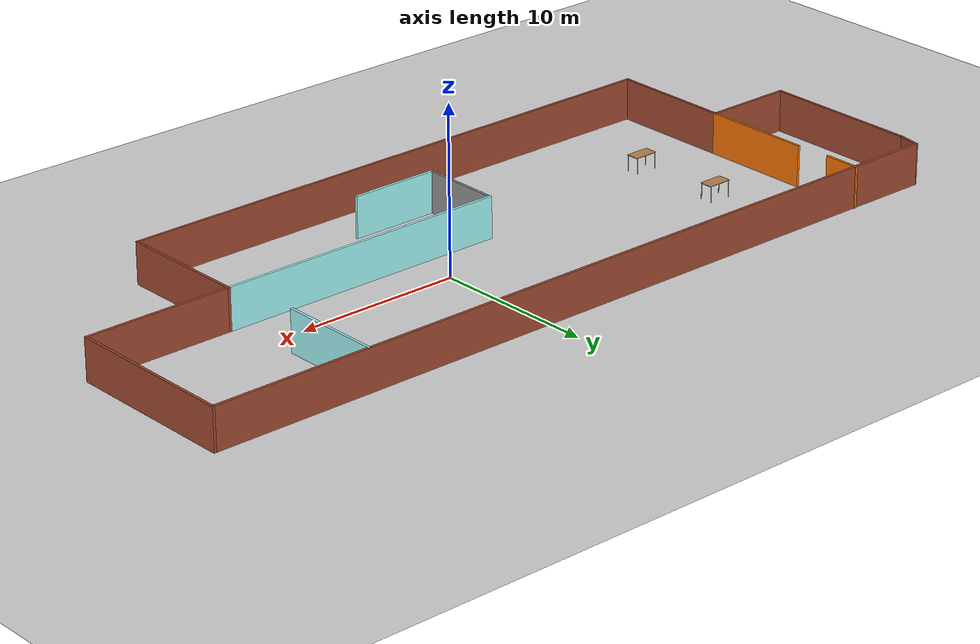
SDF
<sdf version="1.7">
 <world name="default">
  <light name="sun" type="directional">
   <pose>0 0 10 0 -0 0</pose>
   <diffuse>0.8 0.8 0.8 1</diffuse>
   <specular>0.2 0.2 0.2 1</specular>
   <attenuation>
    <range>1000</range>
    <constant>0.9</constant>
    <linear>0.01</linear>
    <quadratic>0.001</quadratic>
   </attenuation>
   <direction>-0.5 0.1 -0.9</direction>
   <spot><inner_angle>0</inner_angle><outer_angle>0</outer_angle><falloff>0</falloff></spot>
  </light>
  <model name="ground_plane">
   <static>1</static>
   <link name="link">
    <collision name="collision">
     <geometry><plane><normal>0 0 1</normal><size>100 100</size></plane></geometry>
     <surface>
      <contact><collide_bitmask>65535</collide_bitmask></contact>
      <friction><ode><mu>100</mu><mu2>50</mu2></ode></friction>
     </surface>
    </collision>
    <visual name="visual">
     <cast_shadows>0</cast_shadows>
     <geometry><plane><normal>0 0 1</normal><size>100 100</size></plane></geometry>
     <material>
      <script><uri>file://media/materials/scripts/gazebo.material</uri><name>Gazebo/Grey</name></script>
     </material>
    </visual>
   </link>
  </model>
  <gravity>0 0 -9.8</gravity>
  <magnetic_field>6e-06 2.3e-05 -4.2e-05</magnetic_field>
  <atmosphere type="adiabatic"/>
  <physics type="ode">
   <max_step_size>0.001</max_step_size>
   <real_time_factor>1</real_time_factor>
   <real_time_update_rate>1000</real_time_update_rate>
  </physics>
  <scene><ambient>0.4 0.4 0.4 1</ambient><background>0.7 0.7 0.7 1</background><shadows>1</shadows></scene>
  <spherical_coordinates>
   <surface_model>EARTH_WGS84</surface_model>
   <latitude_deg>0</latitude_deg>
   <longitude_deg>0</longitude_deg>
   <elevation>0</elevation>
   <heading_deg>0</heading_deg>
  </spherical_coordinates>
  <model name="myhouse">
   <pose>-3.23928 -1.27261 0 0 -0 0</pose>
   <link name="Wall_0">
    <collision name="Wall_0_Collision">
     <geometry><box><size>9.75 0.15 2.5</size></box></geometry>
     <pose>0 0 1.25 0 -0 0</pose>
    </collision>
    <visual name="Wall_0_Visual">
     <pose>0 0 1.25 0 -0 0</pose>
     <geometry><box><size>9.75 0.15 2.5</size></box></geometry>
     <material>
      <script><uri>file://media/materials/scripts/gazebo.material</uri><name>Gazebo/Bricks</name></script>
      <ambient>1 1 1 1</ambient>
     </material>
     <meta><layer>0</layer></meta>
    </visual>
    <pose>-24.8945 3.02404 0 0 -0 -1.5708</pose>
   </link>
   <link name="Wall_1">
    <collision name="Wall_1_Collision">
     <geometry><box><size>5.5 0.15 2.5</size></box></geometry>
     <pose>0 0 1.25 0 -0 0</pose>
    </collision>
    <visual name="Wall_1_Visual">
     <pose>0 0 1.25 0 -0 0</pose>
     <geometry><box><size>5.5 0.15 2.5</size></box></geometry>
     <material>
      <script><uri>file://media/materials/scripts/gazebo.material</uri><name>Gazebo/Bricks</name></script>
      <ambient>1 1 1 1</ambient>
     </material>
     <meta><layer>0</layer></meta>
    </visual>
    <pose>-22.2195 -1.77597 0 0 -0 0</pose>
   </link>
   <link name="Wall_11">
    <collision name="Wall_11_Collision">
     <geometry><box><size>6.75 0.15 2.5</size></box></geometry>
     <pose>0 0 1.25 0 -0 0</pose>
    </collision>
    <visual name="Wall_11_Visual">
     <pose>0 0 1.25 0 -0 0</pose>
     <geometry><box><size>6.75 0.15 2.5</size></box></geometry>
     <material>
      <script><uri>file://media/materials/scripts/gazebo.material</uri><name>Gazebo/Grey</name></script>
      <ambient>0.996078 0.47451 0.0196078 1</ambient>
     </material>
     <meta><layer>0</layer></meta>
    </visual>
    <pose>-19.5445 1.52404 0 0 -0 1.5708</pose>
   </link>
   <link name="Wall_14">
    <collision name="Wall_14_Collision">
     <geometry><box><size>2.25 0.15 2.5</size></box></geometry>
     <pose>0 0 1.25 0 -0 0</pose>
    </collision>
    <visual name="Wall_14_Visual">
     <pose>0 0 1.25 0 -0 0</pose>
     <geometry><box><size>2.25 0.15 2.5</size></box></geometry>
     <material>
      <script><uri>file://media/materials/scripts/gazebo.material</uri><name>Gazebo/Grey</name></script>
      <ambient>0.996078 0.47451 0.0196078 1</ambient>
     </material>
     <meta><layer>0</layer></meta>
    </visual>
    <pose>-19.6868 8.07597 0 0 -0 -1.5708</pose>
   </link>
   <link name="Wall_16">
    <collision name="Wall_16_Collision">
     <geometry><box><size>18 0.15 2.5</size></box></geometry>
     <pose>0 0 1.25 0 -0 0</pose>
    </collision>
    <visual name="Wall_16_Visual">
     <pose>0 0 1.25 0 -0 0</pose>
     <geometry><box><size>18 0.15 2.5</size></box></geometry>
     <material>
      <script><uri>file://media/materials/scripts/gazebo.material</uri><name>Gazebo/Grey</name></script>
      <ambient>0.666667 1 1 1</ambient>
     </material>
     <meta><layer>0</layer></meta>
    </visual>
    <pose>7.13045 -1.27597 0 0 -0 3.14159</pose>
   </link>
   <link name="Wall_17">
    <collision name="Wall_17_Collision">
     <geometry><box><size>5 0.15 2.5</size></box></geometry>
     <pose>0 0 1.25 0 -0 0</pose>
    </collision>
    <visual name="Wall_17_Visual">
     <pose>0 0 1.25 0 -0 0</pose>
     <geometry><box><size>5 0.15 2.5</size></box></geometry>
     <material>
      <script><uri>file://media/materials/scripts/gazebo.material</uri><name>Gazebo/Grey</name></script>
      <ambient>1 1 1 1</ambient>
     </material>
     <meta><layer>0</layer></meta>
    </visual>
    <pose>-1.79455 -3.70097 0 0 -0 -1.5708</pose>
   </link>
   <link name="Wall_18">
    <collision name="Wall_18_Collision">
     <geometry><box><size>5.5 0.15 2.5</size></box></geometry>
     <pose>0 0 1.25 0 -0 0</pose>
    </collision>
    <visual name="Wall_18_Visual">
     <pose>0 0 1.25 0 -0 0</pose>
     <geometry><box><size>5.5 0.15 2.5</size></box></geometry>
     <material>
      <script><uri>file://media/materials/scripts/gazebo.material</uri><name>Gazebo/Grey</name></script>
      <ambient>0.666667 1 1 1</ambient>
     </material>
     <meta><layer>0</layer></meta>
    </visual>
    <pose>0.880453 -6.12596 0 0 -0 0</pose>
   </link>
   <link name="Wall_2">
    <collision name="Wall_2_Collision">
     <geometry><box><size>7.5 0.15 2.5</size></box></geometry>
     <pose>0 0 1.25 0 -0 0</pose>
    </collision>
    <visual name="Wall_2_Visual">
     <pose>0 0 1.25 0 -0 0</pose>
     <geometry><box><size>7.5 0.15 2.5</size></box></geometry>
     <material>
      <script><uri>file://media/materials/scripts/gazebo.material</uri><name>Gazebo/Bricks</name></script>
      <ambient>1 1 1 1</ambient>
     </material>
     <meta><layer>0</layer></meta>
    </visual>
    <pose>-19.5445 -5.45097 0 0 -0 -1.5708</pose>
   </link>
   <link name="Wall_20">
    <collision name="Wall_20_Collision">
     <geometry><box><size>6.25 0.15 2.5</size></box></geometry>
     <pose>0 0 1.25 0 -0 0</pose>
    </collision>
    <visual name="Wall_20_Visual">
     <pose>0 0 1.25 0 -0 0</pose>
     <geometry><box><size>6.25 0.15 2.5</size></box></geometry>
     <material>
      <script><uri>file://media/materials/scripts/gazebo.material</uri><name>Gazebo/Grey</name></script>
      <ambient>0.666667 1 1 1</ambient>
     </material>
     <meta><layer>0</layer></meta>
    </visual>
    <pose>15.2212 5.99459 0 0 -0 -1.5708</pose>
   </link>
   <link name="Wall_3">
    <collision name="Wall_3_Collision">
     <geometry><box><size>35.75 0.15 2.5</size></box></geometry>
     <pose>0 0 1.25 0 -0 0</pose>
    </collision>
    <visual name="Wall_3_Visual">
     <pose>0 0 1.25 0 -0 0</pose>
     <geometry><box><size>35.75 0.15 2.5</size></box></geometry>
     <material>
      <script><uri>file://media/materials/scripts/gazebo.material</uri><name>Gazebo/Bricks</name></script>
      <ambient>1 1 1 1</ambient>
     </material>
     <meta><layer>0</layer></meta>
    </visual>
    <pose>-1.74455 -9.12597 0 0 -0 0</pose>
   </link>
   <link name="Wall_5">
    <collision name="Wall_5_Collision">
     <geometry><box><size>8 0.15 2.5</size></box></geometry>
     <pose>0 0 1.25 0 -0 0</pose>
    </collision>
    <visual name="Wall_5_Visual">
     <pose>0 0 1.25 0 -0 0</pose>
     <geometry><box><size>8 0.15 2.5</size></box></geometry>
     <material>
      <script><uri>file://media/materials/scripts/gazebo.material</uri><name>Gazebo/Bricks</name></script>
      <ambient>1 1 1 1</ambient>
     </material>
     <meta><layer>0</layer></meta>
    </visual>
    <pose>16.0555 -5.20097 0 0 -0 1.5708</pose>
   </link>
   <link name="Wall_6">
    <collision name="Wall_6_Collision">
     <geometry><box><size>9 0.15 2.5</size></box></geometry>
     <pose>0 0 1.25 0 -0 0</pose>
    </collision>
    <visual name="Wall_6_Visual">
     <pose>0 0 1.25 0 -0 0</pose>
     <geometry><box><size>9 0.15 2.5</size></box></geometry>
     <material>
      <script><uri>file://media/materials/scripts/gazebo.material</uri><name>Gazebo/Bricks</name></script>
      <ambient>1 1 1 1</ambient>
     </material>
     <meta><layer>0</layer></meta>
    </visual>
    <pose>20.4805 -1.27597 0 0 -0 0</pose>
   </link>
   <link name="Wall_7">
    <collision name="Wall_7_Collision">
     <geometry><box><size>10.5 0.15 2.5</size></box></geometry>
     <pose>0 0 1.25 0 -0 0</pose>
    </collision>
    <visual name="Wall_7_Visual">
     <pose>0 0 1.25 0 -0 0</pose>
     <geometry><box><size>10.5 0.15 2.5</size></box></geometry>
     <material>
      <script><uri>file://media/materials/scripts/gazebo.material</uri><name>Gazebo/Bricks</name></script>
      <ambient>1 1 1 1</ambient>
     </material>
     <meta><layer>0</layer></meta>
    </visual>
    <pose>24.9055 3.89904 0 0 -0 1.5708</pose>
   </link>
   <link name="Wall_8">
    <collision name="Wall_8_Collision">
     <geometry><box><size>49.75 0.15 2.5</size></box></geometry>
     <pose>0 0 1.25 0 -0 0</pose>
    </collision>
    <visual name="Wall_8_Visual">
     <pose>0 0 1.25 0 -0 0</pose>
     <geometry><box><size>49.75 0.15 2.5</size></box></geometry>
     <material>
      <script><uri>file://media/materials/scripts/gazebo.material</uri><name>Gazebo/Bricks</name></script>
      <ambient>1 1 1 1</ambient>
     </material>
     <meta><layer>0</layer></meta>
    </visual>
    <pose>0.105453 9.07404 0 0 -0 3.14159</pose>
   </link>
   <link name="Wall_9">
    <collision name="Wall_9_Collision">
     <geometry><box><size>1.4159 0.15 2.5</size></box></geometry>
     <pose>0 0 1.25 0 -0 0</pose>
    </collision>
    <visual name="Wall_9_Visual">
     <pose>0 0 1.25 0 -0 0</pose>
     <geometry><box><size>1.4159 0.15 2.5</size></box></geometry>
     <material>
      <script><uri>file://media/materials/scripts/gazebo.material</uri><name>Gazebo/Bricks</name></script>
      <ambient>1 1 1 1</ambient>
     </material>
     <meta><layer>0</layer></meta>
    </visual>
    <pose>-24.7945 8.44904 0 0 -0 -1.72945</pose>
   </link>
   <static>1</static>
  </model>
  <model name="cabinet">
   <static>1</static>
   <link name="cabinet_bottom_plate">
    <inertial>
     <pose>0 0 -1 0 -0 0</pose>
     <inertia><ixx>2.05</ixx><ixy>0</ixy><ixz>0</ixz><iyy>2.05</iyy><iyz>0</iyz><izz>2.05</izz></inertia>
     <mass>25</mass>
    </inertial>
    <collision name="cabinet_bottom_plate_geom">
     <pose>0 0 0.01 0 -0 0</pose>
     <geometry><box><size>0.45 0.45 0.02</size></box></geometry>
    </collision>
    <visual name="cabinet_bottom_plate_geom_visual">
     <pose>0 0 0.01 0 -0 0</pose>
     <geometry><box><size>0.45 0.45 0.02</size></box></geometry>
     <material>
      <script><uri>file://media/materials/scripts/gazebo.material</uri><name>Gazebo/Wood</name></script>
     </material>
    </visual>
    <collision name="cabinet_bottom_plate_geom_cabinet_back_plate">
     <pose>0.235 0 0.51 0 -0 0</pose>
     <geometry><box><size>0.02 0.45 1.02</size></box></geometry>
    </collision>
    <visual name="cabinet_bottom_plate_geom_cabinet_back_plate_visual">
     <pose>0.235 0 0.51 0 -0 0</pose>
     <geometry><box><size>0.02 0.45 1.02</size></box></geometry>
     <material>
      <script><uri>file://media/materials/scripts/gazebo.material</uri><name>Gazebo/Wood</name></script>
     </material>
    </visual>
    <collision name="cabinet_bottom_plate_geom_cabinet_left_plate">
     <pose>0 0.235 0.51 0 -0 0</pose>
     <geometry><box><size>0.45 0.02 1.02</size></box></geometry>
    </collision>
    <visual name="cabinet_bottom_plate_geom_cabinet_left_plate_visual">
     <pose>0 0.235 0.51 0 -0 0</pose>
     <geometry><box><size>0.45 0.02 1.02</size></box></geometry>
     <material>
      <script><uri>file://media/materials/scripts/gazebo.material</uri><name>Gazebo/Wood</name></script>
     </material>
    </visual>
    <collision name="cabinet_bottom_plate_geom_cabinet_middle_plate">
     <pose>0 0 0.51 0 -0 0</pose>
     <geometry><box><size>0.45 0.45 0.02</size></box></geometry>
    </collision>
    <visual name="cabinet_bottom_plate_geom_cabinet_middle_plate_visual">
     <pose>0 0 0.51 0 -0 0</pose>
     <geometry><box><size>0.45 0.45 0.02</size></box></geometry>
     <material>
      <script><uri>file://media/materials/scripts/gazebo.material</uri><name>Gazebo/Wood</name></script>
     </material>
    </visual>
    <collision name="cabinet_bottom_plate_geom_cabinet_right_plate">
     <pose>0 -0.235 0.51 0 -0 0</pose>
     <geometry><box><size>0.45 0.02 1.02</size></box></geometry>
    </collision>
    <visual name="cabinet_bottom_plate_geom_cabinet_right_plate_visual">
     <pose>0 -0.235 0.51 0 -0 0</pose>
     <geometry><box><size>0.45 0.02 1.02</size></box></geometry>
     <material>
      <script><uri>file://media/materials/scripts/gazebo.material</uri><name>Gazebo/Wood</name></script>
     </material>
    </visual>
    <collision name="cabinet_bottom_plate_geom_cabinet_top_plate">
     <pose>0 0 1.01 0 -0 0</pose>
     <geometry><box><size>0.45 0.45 0.02</size></box></geometry>
    </collision>
    <visual name="cabinet_bottom_plate_geom_cabinet_top_plate_visual">
     <pose>0 0 1.01 0 -0 0</pose>
     <geometry><box><size>0.45 0.45 0.02</size></box></geometry>
     <material>
      <script><uri>file://media/materials/scripts/gazebo.material</uri><name>Gazebo/Wood</name></script>
     </material>
    </visual>
   </link>
   <pose>-27.5533 7.04256 0 0 -0 0</pose>
  </model>
  <model name="cabinet_0">
   <static>1</static>
   <link name="cabinet_bottom_plate">
    <inertial>
     <pose>0 0 -1 0 -0 0</pose>
     <inertia><ixx>2.05</ixx><ixy>0</ixy><ixz>0</ixz><iyy>2.05</iyy><iyz>0</iyz><izz>2.05</izz></inertia>
     <mass>25</mass>
    </inertial>
    <collision name="cabinet_bottom_plate_geom">
     <pose>0 0 0.01 0 -0 0</pose>
     <geometry><box><size>0.45 0.45 0.02</size></box></geometry>
    </collision>
    <visual name="cabinet_bottom_plate_geom_visual">
     <pose>0 0 0.01 0 -0 0</pose>
     <geometry><box><size>0.45 0.45 0.02</size></box></geometry>
     <material>
      <script><uri>file://media/materials/scripts/gazebo.material</uri><name>Gazebo/Wood</name></script>
     </material>
    </visual>
    <collision name="cabinet_bottom_plate_geom_cabinet_back_plate">
     <pose>0.235 0 0.51 0 -0 0</pose>
     <geometry><box><size>0.02 0.45 1.02</size></box></geometry>
    </collision>
    <visual name="cabinet_bottom_plate_geom_cabinet_back_plate_visual">
     <pose>0.235 0 0.51 0 -0 0</pose>
     <geometry><box><size>0.02 0.45 1.02</size></box></geometry>
     <material>
      <script><uri>file://media/materials/scripts/gazebo.material</uri><name>Gazebo/Wood</name></script>
     </material>
    </visual>
    <collision name="cabinet_bottom_plate_geom_cabinet_left_plate">
     <pose>0 0.235 0.51 0 -0 0</pose>
     <geometry><box><size>0.45 0.02 1.02</size></box></geometry>
    </collision>
    <visual name="cabinet_bottom_plate_geom_cabinet_left_plate_visual">
     <pose>0 0.235 0.51 0 -0 0</pose>
     <geometry><box><size>0.45 0.02 1.02</size></box></geometry>
     <material>
      <script><uri>file://media/materials/scripts/gazebo.material</uri><name>Gazebo/Wood</name></script>
     </material>
    </visual>
    <collision name="cabinet_bottom_plate_geom_cabinet_middle_plate">
     <pose>0 0 0.51 0 -0 0</pose>
     <geometry><box><size>0.45 0.45 0.02</size></box></geometry>
    </collision>
    <visual name="cabinet_bottom_plate_geom_cabinet_middle_plate_visual">
     <pose>0 0 0.51 0 -0 0</pose>
     <geometry><box><size>0.45 0.45 0.02</size></box></geometry>
     <material>
      <script><uri>file://media/materials/scripts/gazebo.material</uri><name>Gazebo/Wood</name></script>
     </material>
    </visual>
    <collision name="cabinet_bottom_plate_geom_cabinet_right_plate">
     <pose>0 -0.235 0.51 0 -0 0</pose>
     <geometry><box><size>0.45 0.02 1.02</size></box></geometry>
    </collision>
    <visual name="cabinet_bottom_plate_geom_cabinet_right_plate_visual">
     <pose>0 -0.235 0.51 0 -0 0</pose>
     <geometry><box><size>0.45 0.02 1.02</size></box></geometry>
     <material>
      <script><uri>file://media/materials/scripts/gazebo.material</uri><name>Gazebo/Wood</name></script>
     </material>
    </visual>
    <collision name="cabinet_bottom_plate_geom_cabinet_top_plate">
     <pose>0 0 1.01 0 -0 0</pose>
     <geometry><box><size>0.45 0.45 0.02</size></box></geometry>
    </collision>
    <visual name="cabinet_bottom_plate_geom_cabinet_top_plate_visual">
     <pose>0 0 1.01 0 -0 0</pose>
     <geometry><box><size>0.45 0.45 0.02</size></box></geometry>
     <material>
      <script><uri>file://media/materials/scripts/gazebo.material</uri><name>Gazebo/Wood</name></script>
     </material>
    </visual>
   </link>
   <pose>-23.3077 6.83005 0 0 -0 0</pose>
  </model>
  <model name="table">
   <static>1</static>
   <link name="link">
    <collision name="surface">
     <pose>0 0 1 0 -0 0</pose>
     <geometry><box><size>1.5 0.8 0.03</size></box></geometry>
     <surface><friction><ode><mu>0.6</mu><mu2>0.6</mu2></ode></friction></surface>
    </collision>
    <visual name="visual1">
     <pose>0 0 1 0 -0 0</pose>
     <geometry><box><size>1.5 0.8 0.03</size></box></geometry>
     <material>
      <script><uri>file://media/materials/scripts/gazebo.material</uri><name>Gazebo/Wood</name></script>
     </material>
    </visual>
    <collision name="front_left_leg">
     <pose>0.68 0.38 0.5 0 -0 0</pose>
     <geometry><cylinder><radius>0.02</radius><length>1</length></cylinder></geometry>
    </collision>
    <visual name="front_left_leg">
     <pose>0.68 0.38 0.5 0 -0 0</pose>
     <geometry><cylinder><radius>0.02</radius><length>1</length></cylinder></geometry>
     <material>
      <script><uri>file://media/materials/scripts/gazebo.material</uri><name>Gazebo/Grey</name></script>
     </material>
    </visual>
    <collision name="front_right_leg">
     <pose>0.68 -0.38 0.5 0 -0 0</pose>
     <geometry><cylinder><radius>0.02</radius><length>1</length></cylinder></geometry>
    </collision>
    <visual name="front_right_leg">
     <pose>0.68 -0.38 0.5 0 -0 0</pose>
     <geometry><cylinder><radius>0.02</radius><length>1</length></cylinder></geometry>
     <material>
      <script><uri>file://media/materials/scripts/gazebo.material</uri><name>Gazebo/Grey</name></script>
     </material>
    </visual>
    <collision name="back_right_leg">
     <pose>-0.68 -0.38 0.5 0 -0 0</pose>
     <geometry><cylinder><radius>0.02</radius><length>1</length></cylinder></geometry>
    </collision>
    <visual name="back_right_leg">
     <pose>-0.68 -0.38 0.5 0 -0 0</pose>
     <geometry><cylinder><radius>0.02</radius><length>1</length></cylinder></geometry>
     <material>
      <script><uri>file://media/materials/scripts/gazebo.material</uri><name>Gazebo/Grey</name></script>
     </material>
    </visual>
    <collision name="back_left_leg">
     <pose>-0.68 0.38 0.5 0 -0 0</pose>
     <geometry><cylinder><radius>0.02</radius><length>1</length></cylinder></geometry>
    </collision>
    <visual name="back_left_leg">
     <pose>-0.68 0.38 0.5 0 -0 0</pose>
     <geometry><cylinder><radius>0.02</radius><length>1</length></cylinder></geometry>
     <material>
      <script><uri>file://media/materials/scripts/gazebo.material</uri><name>Gazebo/Grey</name></script>
     </material>
    </visual>
   </link>
   <pose>-18.1522 1.64342 0 0 -0 0</pose>
  </model>
  <model name="table_0">
   <static>1</static>
   <link name="link">
    <collision name="surface">
     <pose>0 0 1 0 -0 0</pose>
     <geometry><box><size>1.5 0.8 0.03</size></box></geometry>
     <surface><friction><ode><mu>0.6</mu><mu2>0.6</mu2></ode></friction></surface>
    </collision>
    <visual name="visual1">
     <pose>0 0 1 0 -0 0</pose>
     <geometry><box><size>1.5 0.8 0.03</size></box></geometry>
     <material>
      <script><uri>file://media/materials/scripts/gazebo.material</uri><name>Gazebo/Wood</name></script>
     </material>
    </visual>
    <collision name="front_left_leg">
     <pose>0.68 0.38 0.5 0 -0 0</pose>
     <geometry><cylinder><radius>0.02</radius><length>1</length></cylinder></geometry>
    </collision>
    <visual name="front_left_leg">
     <pose>0.68 0.38 0.5 0 -0 0</pose>
     <geometry><cylinder><radius>0.02</radius><length>1</length></cylinder></geometry>
     <material>
      <script><uri>file://media/materials/scripts/gazebo.material</uri><name>Gazebo/Grey</name></script>
     </material>
    </visual>
    <collision name="front_right_leg">
     <pose>0.68 -0.38 0.5 0 -0 0</pose>
     <geometry><cylinder><radius>0.02</radius><length>1</length></cylinder></geometry>
    </collision>
    <visual name="front_right_leg">
     <pose>0.68 -0.38 0.5 0 -0 0</pose>
     <geometry><cylinder><radius>0.02</radius><length>1</length></cylinder></geometry>
     <material>
      <script><uri>file://media/materials/scripts/gazebo.material</uri><name>Gazebo/Grey</name></script>
     </material>
    </visual>
    <collision name="back_right_leg">
     <pose>-0.68 -0.38 0.5 0 -0 0</pose>
     <geometry><cylinder><radius>0.02</radius><length>1</length></cylinder></geometry>
    </collision>
    <visual name="back_right_leg">
     <pose>-0.68 -0.38 0.5 0 -0 0</pose>
     <geometry><cylinder><radius>0.02</radius><length>1</length></cylinder></geometry>
     <material>
      <script><uri>file://media/materials/scripts/gazebo.material</uri><name>Gazebo/Grey</name></script>
     </material>
    </visual>
    <collision name="back_left_leg">
     <pose>-0.68 0.38 0.5 0 -0 0</pose>
     <geometry><cylinder><radius>0.02</radius><length>1</length></cylinder></geometry>
    </collision>
    <visual name="back_left_leg">
     <pose>-0.68 0.38 0.5 0 -0 0</pose>
     <geometry><cylinder><radius>0.02</radius><length>1</length></cylinder></geometry>
     <material>
      <script><uri>file://media/materials/scripts/gazebo.material</uri><name>Gazebo/Grey</name></script>
     </material>
    </visual>
   </link>
   <pose>-17.9416 -4.09257 0 0 -0 0</pose>
  </model>
 </world>
</sdf>
